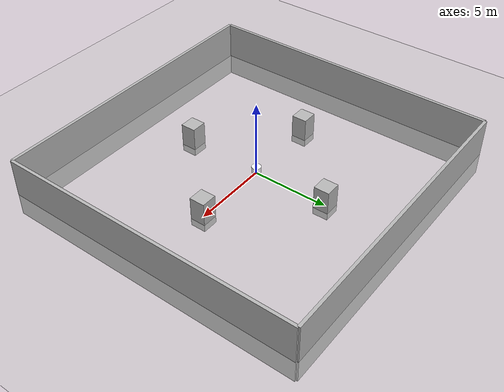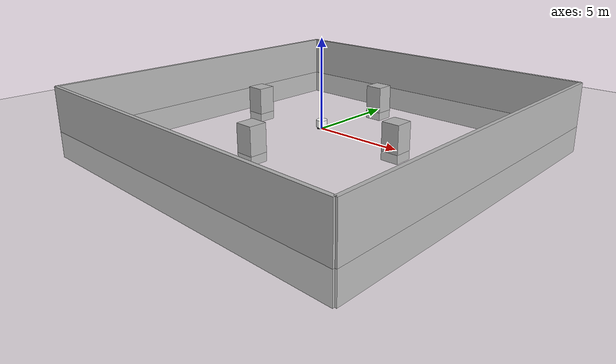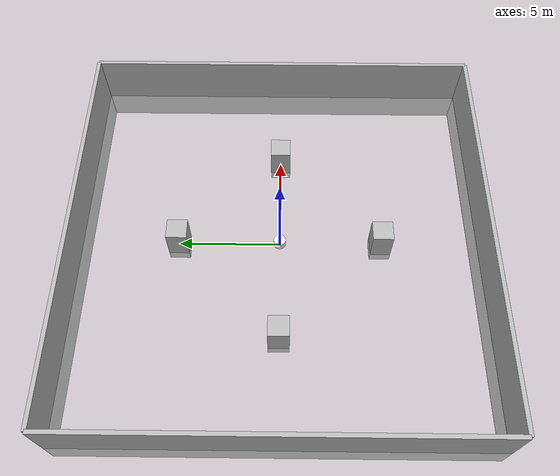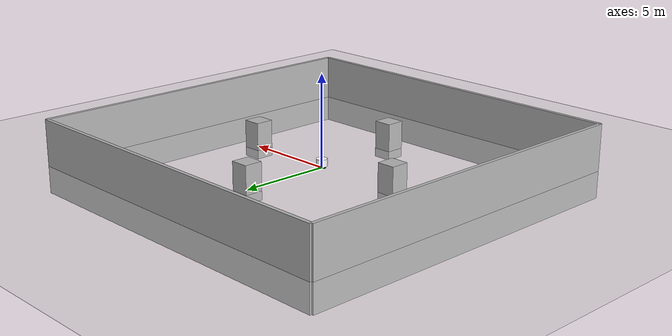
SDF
<?xml version="1.0" ?>
<sdf version="1.6">
  <world name="diff_drive">

    <physics type="ode">
      <gravity>0 0 -10.0</gravity>
      <ode>
        <solver>
          <type>quick</type>
          <iters>10</iters>
          <sor>1.3</sor>
        </solver>
        <constraints>
          <cfm>0.0</cfm>
          <erp>0.2</erp>
          <contact_max_correcting_vel>100.0</contact_max_correcting_vel>
          <contact_surface_layer>0.0</contact_surface_layer>
        </constraints>
      </ode>
      <real_time_factor>1</real_time_factor>
      <max_step_size>0.001</max_step_size>
      <real_time_update_rate>0</real_time_update_rate>
    </physics>

    <model name="ground_plane">
      <static>true</static>
      <link name="link">
        <collision name="collision">
          <geometry>
            <plane>
              <normal>0 0 1</normal>
            </plane>
          </geometry>
        </collision>
        <surface>
        <friction>
          <ode>
            <mu>1</mu>
            <mu2>1</mu2>
          </ode>
        </friction>
      </surface>
        <visual name="visual">
          <geometry>
            <plane>
              <normal>0 0 1</normal>
              <size>100 100</size>
            </plane>
          </geometry>
          <material>
            <ambient>0.8 0.8 0.8 1</ambient>
            <diffuse>0.8 0.8 0.8 1</diffuse>
            <specular>0.8 0.8 0.8 1</specular>
          </material>
        </visual>
      </link>
    </model>

    <model name="wall">
      <pose>10 0 0.5 0 0 0</pose>
      <link name="body">
        <collision name="collision1">
          <geometry>
            <box>
              <size>1 1 0.01</size>
            </box>
          </geometry>
        </collision>
        <visual name="visual1">
          <geometry>
            <box>
              <size>0.2 20 4</size>
            </box>
          </geometry>
        </visual>
      </link>
    </model>

    <model name="wall1">
      <pose>-10 0 0.5 0 0 0</pose>
      <link name="body">
        <collision name="collision1">
          <geometry>
            <box>
              <size>1 1 0.01</size>
            </box>
          </geometry>
        </collision>
        <visual name="visual1">
          <geometry>
            <box>
              <size>0.2 20 4</size>
            </box>
          </geometry>
        </visual>
      </link>
    </model>

    <model name="wall2">
      <pose>0 10 0.5 0 0 0</pose>
      <link name="body">
        <collision name="collision1">
          <geometry>
            <box>
              <size>1 1 0.01</size>
            </box>
          </geometry>
        </collision>
        <visual name="visual1">
          <geometry>
            <box>
              <size>20 0.2 4</size>
            </box>
          </geometry>
        </visual>
      </link>
    </model>

    <model name="wall3">
      <pose>0 -10 0.5 0 0 0</pose>
      <link name="body">
        <collision name="collision1">
          <geometry>
            <box>
              <size>1 1 0.01</size>
            </box>
          </geometry>
        </collision>
        <visual name="visual1">
          <geometry>
            <box>
              <size>20 0.2 4</size>
            </box>
          </geometry>
        </visual>
      </link>
    </model>

    <model name="box">
      <pose>5 0 0.5 0 0 0</pose>
      <link name="body">
        <collision name="collision1">
          <geometry>
            <box>
              <size>1 1 0.01</size>
            </box>
          </geometry>
        </collision>
        <visual name="visual1">
          <geometry>
            <box>
              <size>1 1 2</size>
            </box>
          </geometry>
        </visual>
      </link>
    </model>

    <model name="box1">
      <pose>-5 0 0.5 0 0 0</pose>
      <link name="body">
        <collision name="collision1">
          <geometry>
            <box>
              <size>1 1 0.01</size>
            </box>
          </geometry>
        </collision>
        <visual name="visual1">
          <geometry>
            <box>
              <size>1 1 2</size>
            </box>
          </geometry>
        </visual>
      </link>
    </model>

    <model name="box2">
      <pose>0 5 0.5 0 0 0</pose>
      <link name="body">
        <collision name="collision1">
          <geometry>
            <box>
              <size>1 1 0.01</size>
            </box>
          </geometry>
        </collision>
        <visual name="visual1">
          <geometry>
            <box>
              <size>1 1 2</size>
            </box>
          </geometry>
        </visual>
      </link>
    </model>

    <model name="box3">
      <pose>0 -5 0.5 0 0 0</pose>
      <link name="body">
        <collision name="collision1">
          <geometry>
            <box>
              <size>1 1 0.01</size>
            </box>
          </geometry>
        </collision>
        <visual name="visual1">
          <geometry>
            <box>
              <size>1 1 2</size>
            </box>
          </geometry>
        </visual>
      </link>
    </model>

    <model name='vehicle_blue'>
      <pose>0 0  0.3 0 -0 0</pose>

      <link name='chassis'>
        <pose>0 -0 0.00 0 -0 0</pose>
        <inertial>
          <mass>1.14395</mass>
          <inertia>
            <ixx>0.126164</ixx>
            <ixy>0</ixy>
            <ixz>0</ixz>
            <iyy>0.416519</iyy>
            <iyz>0</iyz>
            <izz>0.481014</izz>
          </inertia>
        </inertial>
        <visual name='visual'>
          <geometry>
            <cylinder>
              <radius> 0.3 </radius>
              <length> 0.4 </length>
            </cylinder>
          </geometry>
          <material>
            <ambient>1.5 1.5 1.0 1</ambient>
            <diffuse>1.5 1.5 1.0 1</diffuse>
            <specular>0.0 0.0 1.0 1</specular>
          </material>
        </visual>
        <collision name='collision'>
          <geometry>
            <cylinder>
              <radius> 0.3 </radius>
              <length> 0.4 </length>
            </cylinder>
          </geometry>
        </collision>
      </link>

      <link name='left_wheel'>
        <pose>0 0.225 -0.2 -1.5707 0 0</pose>
        <inertial>
          <mass>1</mass>
          <inertia>
            <ixx>0.01</ixx>
            <ixy>0</ixy>
            <ixz>0</ixz>
            <iyy>0.01</iyy>
            <iyz>0</iyz>
            <izz>0.01</izz>
          </inertia>
        </inertial>
        <visual name='visual'>
          <geometry>
            <cylinder>
              <radius>0.1</radius>
              <length>0.1</length>
            </cylinder>
          </geometry>
          <material>
            <ambient>0.2 0.2 0.2 1</ambient>
            <diffuse>0.2 0.2 0.2 1</diffuse>
            <specular>0.2 0.2 0.2 1</specular>
          </material>
        </visual>
        <collision name='collision'>
          <geometry>
            <sphere>
              <radius>0.1</radius>
            </sphere>
          </geometry>
        </collision>
        <surface>
        <friction>
          <ode>
            <mu>1</mu>
            <mu2>1</mu2>
          </ode>
        </friction>
      </surface>
      </link>

      <link name='right_wheel'>
        <pose>0 -0.225 -0.2 -1.5707 0 0</pose>
        <inertial>
          <mass>1</mass>
          <inertia>
            <ixx>0.01</ixx>
            <ixy>0</ixy>
            <ixz>0</ixz>
            <iyy>0.01</iyy>
            <iyz>0</iyz>
            <izz>0.01</izz>
          </inertia>
        </inertial>
        <visual name='visual'>
          <geometry>
            <cylinder>
              <radius>0.1</radius>
              <length>0.1</length>
            </cylinder>
          </geometry>
          <material>
            <ambient>0.2 0.2 0.2 1</ambient>
            <diffuse>0.2 0.2 0.2 1</diffuse>
            <specular>0.2 0.2 0.2 1</specular>
          </material>
        </visual>
        <collision name='collision'>
          <geometry>
            <sphere>
              <radius>0.1</radius>
            </sphere>
          </geometry>
        </collision>
        <surface>
        <friction>
          <ode>
            <mu>1</mu>
            <mu2>1</mu2>
          </ode>
        </friction>
      </surface>
      </link>

      <link name='caster'>
        <pose>-0.2 -0 -0.2 0 -0 0</pose>
        <inertial>
          <mass>1</mass>
          <inertia>
            <ixx>0.1</ixx>
            <ixy>0</ixy>
            <ixz>0</ixz>
            <iyy>0.1</iyy>
            <iyz>0</iyz>
            <izz>0.1</izz>
          </inertia>
        </inertial>
        <visual name='visual'>
          <geometry>
            <sphere>
              <radius>0.1</radius>
            </sphere>
          </geometry>
          <material>
            <ambient>0.2 0.2 0.2 1</ambient>
            <diffuse>0.2 0.2 0.2 1</diffuse>
            <specular>0.2 0.2 0.2 1</specular>
          </material>
        </visual>
        <collision name='collision'>
          <geometry>
            <sphere>
              <radius>0.1</radius>
            </sphere>
          </geometry>
        </collision>
      </link>

      <link name='caster2'>
        <pose>0.2 -0 -0.2 0 -0 0</pose>
        <inertial>
          <mass>1</mass>
          <inertia>
            <ixx>0.1</ixx>
            <ixy>0</ixy>
            <ixz>0</ixz>
            <iyy>0.1</iyy>
            <iyz>0</iyz>
            <izz>0.1</izz>
          </inertia>
        </inertial>
        <visual name='visual'>
          <geometry>
            <sphere>
              <radius>0.1</radius>
            </sphere>
          </geometry>
          <material>
            <ambient>0.2 0.2 0.2 1</ambient>
            <diffuse>0.2 0.2 0.2 1</diffuse>
            <specular>0.2 0.2 0.2 1</specular>
          </material>
        </visual>
        <collision name='collision'>
          <geometry>
            <sphere>
              <radius>0.1</radius>
            </sphere>
          </geometry>
        </collision>
      </link>

      <link name='lidar'>
        <pose>0 -0 0.25 0 -0 0</pose>
        <inertial>
          <mass>1.14395</mass>
          <inertia>
            <ixx>0.126164</ixx>
            <ixy>0</ixy>
            <ixz>0</ixz>
            <iyy>0.416519</iyy>
            <iyz>0</iyz>
            <izz>0.481014</izz>
          </inertia>
        </inertial>
        <visual name='visual'>
          <geometry>
            <box>
              <size>0.01 0.01 0.1</size>
            </box>
          </geometry>
          <material>
            <ambient>0.5 0.5 1.0 1</ambient>
            <diffuse>0.5 0.5 1.0 1</diffuse>
            <specular>0.0 0.0 1.0 1</specular>
          </material>
        </visual>
          <sensor type="gpu_ray" name="head_hokuyo_sensor">
      <pose>0 0 0 0 0 0</pose>
      <visualize>true</visualize>
      <update_rate>0</update_rate>
      <ray>
        <scan>
          <horizontal>
            <samples>360</samples>
            <resolution>1</resolution>
            <min_angle>-3.14</min_angle>
            <max_angle>3.14</max_angle>
          </horizontal>
        </scan>
        <range>
          <min>0.02</min>
          <max>3.5</max>
          <resolution>0.01</resolution>
        </range>
      </ray>
      <plugin name="gazebo_ros_head_hokuyo_controller" filename="libgazebo_ros_gpu_laser.so">
        <topicName>laser_back/scan</topicName>
        <frameName>/lidar_link</frameName>
      </plugin>
    </sensor>
      </link>

      <joint name='left_wheel_joint' type='revolute'>
        <parent>chassis</parent>
        <child>left_wheel</child>
        <axis>
          <xyz>0 0 1</xyz>
          <limit>
            <lower>-1.79769e+308</lower>
            <upper>1.79769e+308</upper>
          </limit>
        </axis>
      </joint>

       <joint name='lidar_joint' type='fixed'>
        <parent>chassis</parent>
        <child>lidar</child>
        <axis>
          <xyz>0 0 1</xyz>
          <limit>
            <lower>-1.79769e+308</lower>
            <upper>1.79769e+308</upper>
          </limit>
        </axis>
      </joint>

      <joint name='right_wheel_joint' type='revolute'>
        <parent>chassis</parent>
        <child>right_wheel</child>
        <axis>
          <xyz>0 0 1</xyz>
          <limit>
            <lower>-1.79769e+308</lower>
            <upper>1.79769e+308</upper>
          </limit>
        </axis>
      </joint>

      <joint name='caster_wheel' type='ball'>
        <parent>chassis</parent>
        <child>caster</child>
      </joint>

      <joint name='caster_wheel2' type='ball'>
        <parent>chassis</parent>
        <child>caster2</child>
      </joint>

      <plugin name="differential_drive_controller" filename="libgazebo_ros_diff_drive.so">
        <alwaysOn>true</alwaysOn>
        <updateRate>100</updateRate>
        <leftJoint>left_wheel_joint</leftJoint>
        <rightJoint>right_wheel_joint</rightJoint>
        <wheelSeparation>0.450</wheelSeparation>
        <wheelDiameter>0.2</wheelDiameter>
        <torque>100</torque>
        <commandTopic>cmd_vel</commandTopic>
        <odometryTopic>odom</odometryTopic>
        <odometryFrame>odom</odometryFrame>
        <robotBaseFrame>base_link</robotBaseFrame>
      </plugin>

    </model>
  </world>
</sdf>
